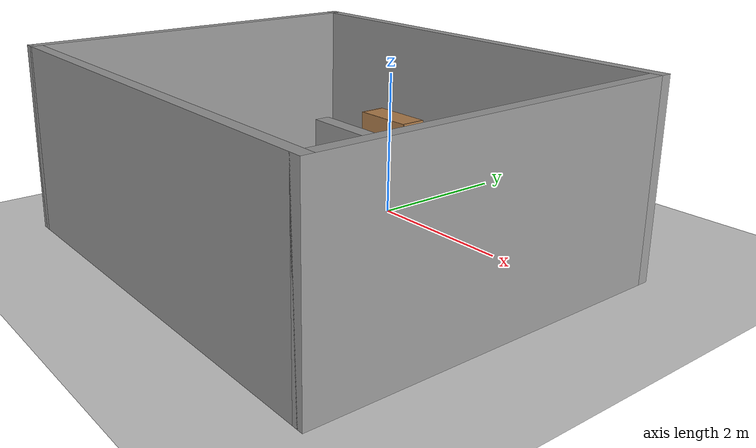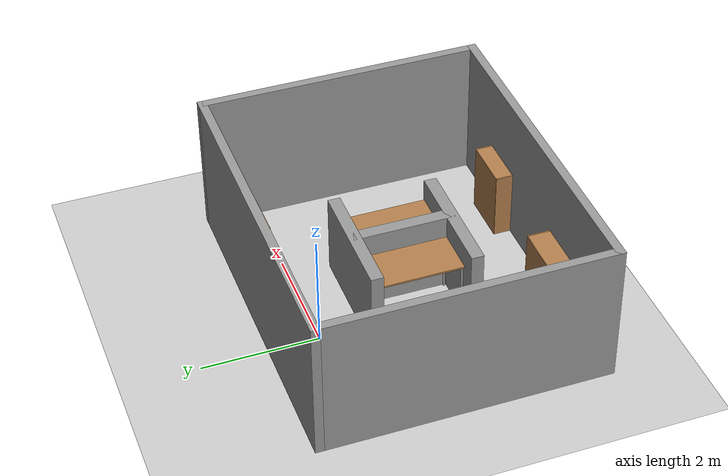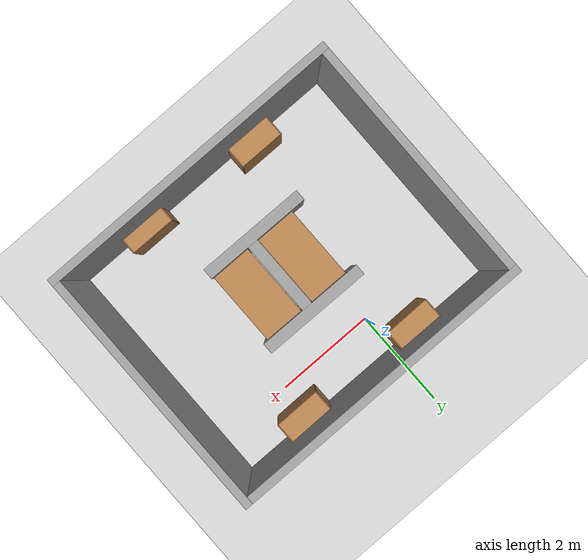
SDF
<sdf version="1.7">
 <world name="default">
  <light name="sun" type="directional">
   <pose>0 0 10 0 -0 0</pose>
   <diffuse>0.8 0.8 0.8 1</diffuse>
   <specular>0.2 0.2 0.2 1</specular>
   <attenuation>
    <range>1000</range>
    <constant>0.9</constant>
    <linear>0.01</linear>
    <quadratic>0.001</quadratic>
   </attenuation>
   <direction>-0.5 0.1 -0.9</direction>
   <spot><inner_angle>0</inner_angle><outer_angle>0</outer_angle><falloff>0</falloff></spot>
  </light>
  <model name="ground_plane">
   <static>1</static>
   <link name="link">
    <collision name="collision">
     <geometry><plane><normal>0 0 1</normal><size>100 100</size></plane></geometry>
     <surface>
      <contact><collide_bitmask>65535</collide_bitmask></contact>
      <friction><ode><mu>100</mu><mu2>50</mu2></ode></friction>
     </surface>
    </collision>
    <visual name="visual">
     <cast_shadows>0</cast_shadows>
     <geometry><plane><normal>0 0 1</normal><size>100 100</size></plane></geometry>
     <material>
      <script><uri>file://media/materials/scripts/gazebo.material</uri><name>Gazebo/Grey</name></script>
     </material>
    </visual>
   </link>
  </model>
  <gravity>0 0 -9.8</gravity>
  <magnetic_field>6e-06 2.3e-05 -4.2e-05</magnetic_field>
  <atmosphere type="adiabatic"/>
  <physics type="ode">
   <max_step_size>0.001</max_step_size>
   <real_time_factor>1</real_time_factor>
   <real_time_update_rate>1000</real_time_update_rate>
  </physics>
  <scene><ambient>0.4 0.4 0.4 1</ambient><background>0.7 0.7 0.7 1</background><shadows>1</shadows></scene>
  <spherical_coordinates>
   <surface_model>EARTH_WGS84</surface_model>
   <latitude_deg>0</latitude_deg>
   <longitude_deg>0</longitude_deg>
   <elevation>0</elevation>
   <heading_deg>0</heading_deg>
  </spherical_coordinates>
  <model name="Office4">
   <pose>0.615 -1.625 0 0 -0 0</pose>
   <link name="Wall_0">
    <collision name="Wall_0_Collision">
     <geometry><box><size>6 0.15 2.5</size></box></geometry>
     <pose>0 0 1.25 0 -0 0</pose>
    </collision>
    <visual name="Wall_0_Visual">
     <pose>0 0 1.25 0 -0 0</pose>
     <geometry><box><size>6 0.15 2.5</size></box></geometry>
     <material>
      <script><uri>file://media/materials/scripts/gazebo.material</uri><name>Gazebo/Grey</name></script>
      <ambient>1 1 1 1</ambient>
     </material>
     <meta><layer>0</layer></meta>
    </visual>
    <pose>0 -2.425 0 0 -0 0</pose>
   </link>
   <link name="Wall_3">
    <collision name="Wall_3_Collision">
     <geometry><box><size>5 0.15 2.5</size></box></geometry>
     <pose>0 0 1.25 0 -0 0</pose>
    </collision>
    <visual name="Wall_3_Visual">
     <pose>0 0 1.25 0 -0 0</pose>
     <geometry><box><size>5 0.15 2.5</size></box></geometry>
     <material>
      <script><uri>file://media/materials/scripts/gazebo.material</uri><name>Gazebo/Grey</name></script>
      <ambient>1 1 1 1</ambient>
     </material>
     <meta><layer>0</layer></meta>
    </visual>
    <pose>2.925 -0 0 0 -0 1.5708</pose>
   </link>
   <link name="Wall_4">
    <collision name="Wall_4_Collision">
     <geometry><box><size>6 0.15 2.5</size></box></geometry>
     <pose>0 0 1.25 0 -0 0</pose>
    </collision>
    <visual name="Wall_4_Visual">
     <pose>0 0 1.25 0 -0 0</pose>
     <geometry><box><size>6 0.15 2.5</size></box></geometry>
     <material>
      <script><uri>file://media/materials/scripts/gazebo.material</uri><name>Gazebo/Grey</name></script>
      <ambient>1 1 1 1</ambient>
     </material>
     <meta><layer>0</layer></meta>
    </visual>
    <pose>0 2.425 0 0 -0 3.14159</pose>
   </link>
   <link name="Wall_5">
    <collision name="Wall_5_Collision">
     <geometry><box><size>5 0.15 2.5</size></box></geometry>
     <pose>0 0 1.25 0 -0 0</pose>
    </collision>
    <visual name="Wall_5_Visual">
     <pose>0 0 1.25 0 -0 0</pose>
     <geometry><box><size>5 0.15 2.5</size></box></geometry>
     <material>
      <script><uri>file://media/materials/scripts/gazebo.material</uri><name>Gazebo/Grey</name></script>
      <ambient>1 1 1 1</ambient>
     </material>
     <meta><layer>0</layer></meta>
    </visual>
    <pose>-2.925 -0 0 0 -0 -1.5708</pose>
   </link>
   <static>1</static>
  </model>
  <model name="bookshelf">
   <static>1</static>
   <link name="link">
    <inertial><mass>1</mass></inertial>
    <collision name="back">
     <pose>0 0.005 0.6 0 -0 0</pose>
     <geometry><box><size>0.9 0.01 1.2</size></box></geometry>
    </collision>
    <visual name="visual1">
     <pose>0 0.005 0.6 0 -0 0</pose>
     <geometry><box><size>0.9 0.01 1.2</size></box></geometry>
     <material>
      <script><uri>file://media/materials/scripts/gazebo.material</uri><name>Gazebo/Wood</name></script>
     </material>
    </visual>
    <collision name="left_side">
     <pose>0.45 -0.195 0.6 0 -0 0</pose>
     <geometry><box><size>0.02 0.4 1.2</size></box></geometry>
    </collision>
    <visual name="visual2">
     <pose>0.45 -0.195 0.6 0 -0 0</pose>
     <geometry><box><size>0.02 0.4 1.2</size></box></geometry>
     <material>
      <script><uri>file://media/materials/scripts/gazebo.material</uri><name>Gazebo/Wood</name></script>
     </material>
    </visual>
    <collision name="right_side">
     <pose>-0.45 -0.195 0.6 0 -0 0</pose>
     <geometry><box><size>0.02 0.4 1.2</size></box></geometry>
    </collision>
    <visual name="visual3">
     <pose>-0.45 -0.195 0.6 0 -0 0</pose>
     <geometry><box><size>0.02 0.4 1.2</size></box></geometry>
     <material>
      <script><uri>file://media/materials/scripts/gazebo.material</uri><name>Gazebo/Wood</name></script>
     </material>
    </visual>
    <collision name="bottom">
     <pose>0 -0.195 0.03 0 -0 0</pose>
     <geometry><box><size>0.88 0.4 0.06</size></box></geometry>
    </collision>
    <visual name="visual4">
     <pose>0 -0.195 0.03 0 -0 0</pose>
     <geometry><box><size>0.88 0.4 0.06</size></box></geometry>
     <material>
      <script><uri>file://media/materials/scripts/gazebo.material</uri><name>Gazebo/Wood</name></script>
     </material>
    </visual>
    <collision name="top">
     <pose>0 -0.195 1.19 0 -0 0</pose>
     <geometry><box><size>0.88 0.4 0.02</size></box></geometry>
    </collision>
    <visual name="visual5">
     <pose>0 -0.195 1.19 0 -0 0</pose>
     <geometry><box><size>0.88 0.4 0.02</size></box></geometry>
     <material>
      <script><uri>file://media/materials/scripts/gazebo.material</uri><name>Gazebo/Wood</name></script>
     </material>
    </visual>
    <collision name="low_shelf">
     <pose>0 -0.195 0.43 0 -0 0</pose>
     <geometry><box><size>0.88 0.4 0.02</size></box></geometry>
    </collision>
    <visual name="visual6">
     <pose>0 -0.195 0.43 0 -0 0</pose>
     <geometry><box><size>0.88 0.4 0.02</size></box></geometry>
     <material>
      <script><uri>file://media/materials/scripts/gazebo.material</uri><name>Gazebo/Wood</name></script>
     </material>
    </visual>
    <collision name="high_shelf">
     <pose>0 -0.195 0.8 0 -0 0</pose>
     <geometry><box><size>0.88 0.4 0.02</size></box></geometry>
    </collision>
    <visual name="visual7">
     <pose>0 -0.195 0.8 0 -0 0</pose>
     <geometry><box><size>0.88 0.4 0.02</size></box></geometry>
     <material>
      <script><uri>file://media/materials/scripts/gazebo.material</uri><name>Gazebo/Wood</name></script>
     </material>
    </visual>
   </link>
   <pose>1.92918 -3.68244 0 0 -0 0</pose>
  </model>
  <model name="bookshelf_clone_0">
   <static>1</static>
   <link name="link">
    <inertial><mass>1</mass></inertial>
    <collision name="back">
     <pose>0 0.005 0.6 0 -0 0</pose>
     <geometry><box><size>0.9 0.01 1.2</size></box></geometry>
    </collision>
    <visual name="visual1">
     <pose>0 0.005 0.6 0 -0 0</pose>
     <geometry><box><size>0.9 0.01 1.2</size></box></geometry>
     <material>
      <script><uri>file://media/materials/scripts/gazebo.material</uri><name>Gazebo/Wood</name></script>
     </material>
    </visual>
    <collision name="left_side">
     <pose>0.45 -0.195 0.6 0 -0 0</pose>
     <geometry><box><size>0.02 0.4 1.2</size></box></geometry>
    </collision>
    <visual name="visual2">
     <pose>0.45 -0.195 0.6 0 -0 0</pose>
     <geometry><box><size>0.02 0.4 1.2</size></box></geometry>
     <material>
      <script><uri>file://media/materials/scripts/gazebo.material</uri><name>Gazebo/Wood</name></script>
     </material>
    </visual>
    <collision name="right_side">
     <pose>-0.45 -0.195 0.6 0 -0 0</pose>
     <geometry><box><size>0.02 0.4 1.2</size></box></geometry>
    </collision>
    <visual name="visual3">
     <pose>-0.45 -0.195 0.6 0 -0 0</pose>
     <geometry><box><size>0.02 0.4 1.2</size></box></geometry>
     <material>
      <script><uri>file://media/materials/scripts/gazebo.material</uri><name>Gazebo/Wood</name></script>
     </material>
    </visual>
    <collision name="bottom">
     <pose>0 -0.195 0.03 0 -0 0</pose>
     <geometry><box><size>0.88 0.4 0.06</size></box></geometry>
    </collision>
    <visual name="visual4">
     <pose>0 -0.195 0.03 0 -0 0</pose>
     <geometry><box><size>0.88 0.4 0.06</size></box></geometry>
     <material>
      <script><uri>file://media/materials/scripts/gazebo.material</uri><name>Gazebo/Wood</name></script>
     </material>
    </visual>
    <collision name="top">
     <pose>0 -0.195 1.19 0 -0 0</pose>
     <geometry><box><size>0.88 0.4 0.02</size></box></geometry>
    </collision>
    <visual name="visual5">
     <pose>0 -0.195 1.19 0 -0 0</pose>
     <geometry><box><size>0.88 0.4 0.02</size></box></geometry>
     <material>
      <script><uri>file://media/materials/scripts/gazebo.material</uri><name>Gazebo/Wood</name></script>
     </material>
    </visual>
    <collision name="low_shelf">
     <pose>0 -0.195 0.43 0 -0 0</pose>
     <geometry><box><size>0.88 0.4 0.02</size></box></geometry>
    </collision>
    <visual name="visual6">
     <pose>0 -0.195 0.43 0 -0 0</pose>
     <geometry><box><size>0.88 0.4 0.02</size></box></geometry>
     <material>
      <script><uri>file://media/materials/scripts/gazebo.material</uri><name>Gazebo/Wood</name></script>
     </material>
    </visual>
    <collision name="high_shelf">
     <pose>0 -0.195 0.8 0 -0 0</pose>
     <geometry><box><size>0.88 0.4 0.02</size></box></geometry>
    </collision>
    <visual name="visual7">
     <pose>0 -0.195 0.8 0 -0 0</pose>
     <geometry><box><size>0.88 0.4 0.02</size></box></geometry>
     <material>
      <script><uri>file://media/materials/scripts/gazebo.material</uri><name>Gazebo/Wood</name></script>
     </material>
    </visual>
   </link>
   <pose>-0.53762 -3.57182 0 0 -0 0</pose>
  </model>
  <model name="table">
   <static>1</static>
   <link name="link">
    <collision name="surface">
     <pose>0 0 1 0 -0 0</pose>
     <geometry><box><size>1.5 0.8 0.03</size></box></geometry>
     <surface><friction><ode><mu>0.6</mu><mu2>0.6</mu2></ode></friction></surface>
    </collision>
    <visual name="visual1">
     <pose>0 0 1 0 -0 0</pose>
     <geometry><box><size>1.5 0.8 0.03</size></box></geometry>
     <material>
      <script><uri>file://media/materials/scripts/gazebo.material</uri><name>Gazebo/Wood</name></script>
     </material>
    </visual>
    <collision name="front_left_leg">
     <pose>0.68 0.38 0.5 0 -0 0</pose>
     <geometry><cylinder><radius>0.02</radius><length>1</length></cylinder></geometry>
    </collision>
    <visual name="front_left_leg">
     <pose>0.68 0.38 0.5 0 -0 0</pose>
     <geometry><cylinder><radius>0.02</radius><length>1</length></cylinder></geometry>
     <material>
      <script><uri>file://media/materials/scripts/gazebo.material</uri><name>Gazebo/Grey</name></script>
     </material>
    </visual>
    <collision name="front_right_leg">
     <pose>0.68 -0.38 0.5 0 -0 0</pose>
     <geometry><cylinder><radius>0.02</radius><length>1</length></cylinder></geometry>
    </collision>
    <visual name="front_right_leg">
     <pose>0.68 -0.38 0.5 0 -0 0</pose>
     <geometry><cylinder><radius>0.02</radius><length>1</length></cylinder></geometry>
     <material>
      <script><uri>file://media/materials/scripts/gazebo.material</uri><name>Gazebo/Grey</name></script>
     </material>
    </visual>
    <collision name="back_right_leg">
     <pose>-0.68 -0.38 0.5 0 -0 0</pose>
     <geometry><cylinder><radius>0.02</radius><length>1</length></cylinder></geometry>
    </collision>
    <visual name="back_right_leg">
     <pose>-0.68 -0.38 0.5 0 -0 0</pose>
     <geometry><cylinder><radius>0.02</radius><length>1</length></cylinder></geometry>
     <material>
      <script><uri>file://media/materials/scripts/gazebo.material</uri><name>Gazebo/Grey</name></script>
     </material>
    </visual>
    <collision name="back_left_leg">
     <pose>-0.68 0.38 0.5 0 -0 0</pose>
     <geometry><cylinder><radius>0.02</radius><length>1</length></cylinder></geometry>
    </collision>
    <visual name="back_left_leg">
     <pose>-0.68 0.38 0.5 0 -0 0</pose>
     <geometry><cylinder><radius>0.02</radius><length>1</length></cylinder></geometry>
     <material>
      <script><uri>file://media/materials/scripts/gazebo.material</uri><name>Gazebo/Grey</name></script>
     </material>
    </visual>
   </link>
   <pose>0.155111 -1.69137 0 0 -0 1.57284</pose>
  </model>
  <model name="table_clone">
   <static>1</static>
   <link name="link">
    <collision name="surface">
     <pose>0 0 1 0 -0 0</pose>
     <geometry><box><size>1.5 0.8 0.03</size></box></geometry>
     <surface><friction><ode><mu>0.6</mu><mu2>0.6</mu2></ode></friction></surface>
    </collision>
    <visual name="visual1">
     <pose>0 0 1 0 -0 0</pose>
     <geometry><box><size>1.5 0.8 0.03</size></box></geometry>
     <material>
      <script><uri>file://media/materials/scripts/gazebo.material</uri><name>Gazebo/Wood</name></script>
     </material>
    </visual>
    <collision name="front_left_leg">
     <pose>0.68 0.38 0.5 0 -0 0</pose>
     <geometry><cylinder><radius>0.02</radius><length>1</length></cylinder></geometry>
    </collision>
    <visual name="front_left_leg">
     <pose>0.68 0.38 0.5 0 -0 0</pose>
     <geometry><cylinder><radius>0.02</radius><length>1</length></cylinder></geometry>
     <material>
      <script><uri>file://media/materials/scripts/gazebo.material</uri><name>Gazebo/Grey</name></script>
     </material>
    </visual>
    <collision name="front_right_leg">
     <pose>0.68 -0.38 0.5 0 -0 0</pose>
     <geometry><cylinder><radius>0.02</radius><length>1</length></cylinder></geometry>
    </collision>
    <visual name="front_right_leg">
     <pose>0.68 -0.38 0.5 0 -0 0</pose>
     <geometry><cylinder><radius>0.02</radius><length>1</length></cylinder></geometry>
     <material>
      <script><uri>file://media/materials/scripts/gazebo.material</uri><name>Gazebo/Grey</name></script>
     </material>
    </visual>
    <collision name="back_right_leg">
     <pose>-0.68 -0.38 0.5 0 -0 0</pose>
     <geometry><cylinder><radius>0.02</radius><length>1</length></cylinder></geometry>
    </collision>
    <visual name="back_right_leg">
     <pose>-0.68 -0.38 0.5 0 -0 0</pose>
     <geometry><cylinder><radius>0.02</radius><length>1</length></cylinder></geometry>
     <material>
      <script><uri>file://media/materials/scripts/gazebo.material</uri><name>Gazebo/Grey</name></script>
     </material>
    </visual>
    <collision name="back_left_leg">
     <pose>-0.68 0.38 0.5 0 -0 0</pose>
     <geometry><cylinder><radius>0.02</radius><length>1</length></cylinder></geometry>
    </collision>
    <visual name="back_left_leg">
     <pose>-0.68 0.38 0.5 0 -0 0</pose>
     <geometry><cylinder><radius>0.02</radius><length>1</length></cylinder></geometry>
     <material>
      <script><uri>file://media/materials/scripts/gazebo.material</uri><name>Gazebo/Grey</name></script>
     </material>
    </visual>
   </link>
   <pose>1.20102 -1.69438 0 0 -0 1.57284</pose>
  </model>
  <model name="StaticObject_clone_clone">
   <link name="link_0">
    <inertial>
     <mass>1</mass>
     <inertia>
      <ixx>0.166667</ixx>
      <ixy>0</ixy>
      <ixz>0</ixz>
      <iyy>0.166667</iyy>
      <iyz>0</iyz>
      <izz>0.166667</izz>
     </inertia>
    </inertial>
    <visual name="visual">
     <geometry><box><size>0.215982 2.14377 1.81309</size></box></geometry>
     <material>
      <lighting>1</lighting>
      <script><uri>file://media/materials/scripts/gazebo.material</uri><name>Gazebo/Grey</name></script>
      <shader type="pixel"/>
     </material>
    </visual>
    <collision name="collision">
     <geometry><box><size>0.215982 2.14377 1.81309</size></box></geometry>
     <surface>
      <friction>
       <ode><mu>1</mu><mu2>1</mu2><fdir1>0 0 0</fdir1><slip1>0</slip1><slip2>0</slip2></ode>
       <torsional>
        <coefficient>1</coefficient>
        <patch_radius>0</patch_radius>
        <surface_radius>0</surface_radius>
        <use_patch_radius>1</use_patch_radius>
        <ode><slip>0</slip></ode>
       </torsional>
      </friction>
      <bounce><restitution_coefficient>0</restitution_coefficient><threshold>1e+06</threshold></bounce>
      <contact>
       <collide_without_contact>0</collide_without_contact>
       <collide_without_contact_bitmask>1</collide_without_contact_bitmask>
       <collide_bitmask>1</collide_bitmask>
       <ode>
        <soft_cfm>0</soft_cfm>
        <soft_erp>0.2</soft_erp>
        <kp>1e+13</kp>
        <kd>1</kd>
        <max_vel>0.01</max_vel>
        <min_depth>0</min_depth>
       </ode>
       <bullet>
        <split_impulse>1</split_impulse>
        <split_impulse_penetration_threshold>-0.01</split_impulse_penetration_threshold>
        <soft_cfm>0</soft_cfm>
        <soft_erp>0.2</soft_erp>
        <kp>1e+13</kp>
        <kd>1</kd>
       </bullet>
      </contact>
     </surface>
    </collision>
   </link>
   <static>1</static>
   <pose>0.609999 -0.84 0.5 0 0 -1.57636</pose>
  </model>
  <model name="bookshelf_clone_0_clone">
   <static>1</static>
   <link name="link">
    <inertial><mass>1</mass></inertial>
    <collision name="back">
     <pose>0 0.005 0.6 0 -0 0</pose>
     <geometry><box><size>0.9 0.01 1.2</size></box></geometry>
    </collision>
    <visual name="visual1">
     <pose>0 0.005 0.6 0 -0 0</pose>
     <geometry><box><size>0.9 0.01 1.2</size></box></geometry>
     <material>
      <script><uri>file://media/materials/scripts/gazebo.material</uri><name>Gazebo/Wood</name></script>
     </material>
    </visual>
    <collision name="left_side">
     <pose>0.45 -0.195 0.6 0 -0 0</pose>
     <geometry><box><size>0.02 0.4 1.2</size></box></geometry>
    </collision>
    <visual name="visual2">
     <pose>0.45 -0.195 0.6 0 -0 0</pose>
     <geometry><box><size>0.02 0.4 1.2</size></box></geometry>
     <material>
      <script><uri>file://media/materials/scripts/gazebo.material</uri><name>Gazebo/Wood</name></script>
     </material>
    </visual>
    <collision name="right_side">
     <pose>-0.45 -0.195 0.6 0 -0 0</pose>
     <geometry><box><size>0.02 0.4 1.2</size></box></geometry>
    </collision>
    <visual name="visual3">
     <pose>-0.45 -0.195 0.6 0 -0 0</pose>
     <geometry><box><size>0.02 0.4 1.2</size></box></geometry>
     <material>
      <script><uri>file://media/materials/scripts/gazebo.material</uri><name>Gazebo/Wood</name></script>
     </material>
    </visual>
    <collision name="bottom">
     <pose>0 -0.195 0.03 0 -0 0</pose>
     <geometry><box><size>0.88 0.4 0.06</size></box></geometry>
    </collision>
    <visual name="visual4">
     <pose>0 -0.195 0.03 0 -0 0</pose>
     <geometry><box><size>0.88 0.4 0.06</size></box></geometry>
     <material>
      <script><uri>file://media/materials/scripts/gazebo.material</uri><name>Gazebo/Wood</name></script>
     </material>
    </visual>
    <collision name="top">
     <pose>0 -0.195 1.19 0 -0 0</pose>
     <geometry><box><size>0.88 0.4 0.02</size></box></geometry>
    </collision>
    <visual name="visual5">
     <pose>0 -0.195 1.19 0 -0 0</pose>
     <geometry><box><size>0.88 0.4 0.02</size></box></geometry>
     <material>
      <script><uri>file://media/materials/scripts/gazebo.material</uri><name>Gazebo/Wood</name></script>
     </material>
    </visual>
    <collision name="low_shelf">
     <pose>0 -0.195 0.43 0 -0 0</pose>
     <geometry><box><size>0.88 0.4 0.02</size></box></geometry>
    </collision>
    <visual name="visual6">
     <pose>0 -0.195 0.43 0 -0 0</pose>
     <geometry><box><size>0.88 0.4 0.02</size></box></geometry>
     <material>
      <script><uri>file://media/materials/scripts/gazebo.material</uri><name>Gazebo/Wood</name></script>
     </material>
    </visual>
    <collision name="high_shelf">
     <pose>0 -0.195 0.8 0 -0 0</pose>
     <geometry><box><size>0.88 0.4 0.02</size></box></geometry>
    </collision>
    <visual name="visual7">
     <pose>0 -0.195 0.8 0 -0 0</pose>
     <geometry><box><size>0.88 0.4 0.02</size></box></geometry>
     <material>
      <script><uri>file://media/materials/scripts/gazebo.material</uri><name>Gazebo/Wood</name></script>
     </material>
    </visual>
   </link>
   <pose>-0.552798 0.346434 0 0 0 -3.13171</pose>
  </model>
  <model name="bookshelf_clone_0_clone_clone_clone">
   <static>1</static>
   <link name="link">
    <inertial><mass>1</mass></inertial>
    <collision name="back">
     <pose>0 0.005 0.6 0 -0 0</pose>
     <geometry><box><size>0.9 0.01 1.2</size></box></geometry>
    </collision>
    <visual name="visual1">
     <pose>0 0.005 0.6 0 -0 0</pose>
     <geometry><box><size>0.9 0.01 1.2</size></box></geometry>
     <material>
      <script><uri>file://media/materials/scripts/gazebo.material</uri><name>Gazebo/Wood</name></script>
     </material>
    </visual>
    <collision name="left_side">
     <pose>0.45 -0.195 0.6 0 -0 0</pose>
     <geometry><box><size>0.02 0.4 1.2</size></box></geometry>
    </collision>
    <visual name="visual2">
     <pose>0.45 -0.195 0.6 0 -0 0</pose>
     <geometry><box><size>0.02 0.4 1.2</size></box></geometry>
     <material>
      <script><uri>file://media/materials/scripts/gazebo.material</uri><name>Gazebo/Wood</name></script>
     </material>
    </visual>
    <collision name="right_side">
     <pose>-0.45 -0.195 0.6 0 -0 0</pose>
     <geometry><box><size>0.02 0.4 1.2</size></box></geometry>
    </collision>
    <visual name="visual3">
     <pose>-0.45 -0.195 0.6 0 -0 0</pose>
     <geometry><box><size>0.02 0.4 1.2</size></box></geometry>
     <material>
      <script><uri>file://media/materials/scripts/gazebo.material</uri><name>Gazebo/Wood</name></script>
     </material>
    </visual>
    <collision name="bottom">
     <pose>0 -0.195 0.03 0 -0 0</pose>
     <geometry><box><size>0.88 0.4 0.06</size></box></geometry>
    </collision>
    <visual name="visual4">
     <pose>0 -0.195 0.03 0 -0 0</pose>
     <geometry><box><size>0.88 0.4 0.06</size></box></geometry>
     <material>
      <script><uri>file://media/materials/scripts/gazebo.material</uri><name>Gazebo/Wood</name></script>
     </material>
    </visual>
    <collision name="top">
     <pose>0 -0.195 1.19 0 -0 0</pose>
     <geometry><box><size>0.88 0.4 0.02</size></box></geometry>
    </collision>
    <visual name="visual5">
     <pose>0 -0.195 1.19 0 -0 0</pose>
     <geometry><box><size>0.88 0.4 0.02</size></box></geometry>
     <material>
      <script><uri>file://media/materials/scripts/gazebo.material</uri><name>Gazebo/Wood</name></script>
     </material>
    </visual>
    <collision name="low_shelf">
     <pose>0 -0.195 0.43 0 -0 0</pose>
     <geometry><box><size>0.88 0.4 0.02</size></box></geometry>
    </collision>
    <visual name="visual6">
     <pose>0 -0.195 0.43 0 -0 0</pose>
     <geometry><box><size>0.88 0.4 0.02</size></box></geometry>
     <material>
      <script><uri>file://media/materials/scripts/gazebo.material</uri><name>Gazebo/Wood</name></script>
     </material>
    </visual>
    <collision name="high_shelf">
     <pose>0 -0.195 0.8 0 -0 0</pose>
     <geometry><box><size>0.88 0.4 0.02</size></box></geometry>
    </collision>
    <visual name="visual7">
     <pose>0 -0.195 0.8 0 -0 0</pose>
     <geometry><box><size>0.88 0.4 0.02</size></box></geometry>
     <material>
      <script><uri>file://media/materials/scripts/gazebo.material</uri><name>Gazebo/Wood</name></script>
     </material>
    </visual>
   </link>
   <pose>1.99427 0.308947 0 0 0 -3.13171</pose>
  </model>
  <model name="StaticObject_clone_clone_clone">
   <link name="link_0">
    <inertial>
     <mass>1</mass>
     <inertia>
      <ixx>0.166667</ixx>
      <ixy>0</ixy>
      <ixz>0</ixz>
      <iyy>0.166667</iyy>
      <iyz>0</iyz>
      <izz>0.166667</izz>
     </inertia>
    </inertial>
    <visual name="visual">
     <geometry><box><size>0.215982 2.14377 1.81309</size></box></geometry>
     <material>
      <lighting>1</lighting>
      <script><uri>file://media/materials/scripts/gazebo.material</uri><name>Gazebo/Grey</name></script>
      <shader type="pixel"/>
     </material>
    </visual>
    <collision name="collision">
     <geometry><box><size>0.215982 2.14377 1.81309</size></box></geometry>
     <surface>
      <friction>
       <ode><mu>1</mu><mu2>1</mu2><fdir1>0 0 0</fdir1><slip1>0</slip1><slip2>0</slip2></ode>
       <torsional>
        <coefficient>1</coefficient>
        <patch_radius>0</patch_radius>
        <surface_radius>0</surface_radius>
        <use_patch_radius>1</use_patch_radius>
        <ode><slip>0</slip></ode>
       </torsional>
      </friction>
      <bounce><restitution_coefficient>0</restitution_coefficient><threshold>1e+06</threshold></bounce>
      <contact>
       <collide_without_contact>0</collide_without_contact>
       <collide_without_contact_bitmask>1</collide_without_contact_bitmask>
       <collide_bitmask>1</collide_bitmask>
       <ode>
        <soft_cfm>0</soft_cfm>
        <soft_erp>0.2</soft_erp>
        <kp>1e+13</kp>
        <kd>1</kd>
        <max_vel>0.01</max_vel>
        <min_depth>0</min_depth>
       </ode>
       <bullet>
        <split_impulse>1</split_impulse>
        <split_impulse_penetration_threshold>-0.01</split_impulse_penetration_threshold>
        <soft_cfm>0</soft_cfm>
        <soft_erp>0.2</soft_erp>
        <kp>1e+13</kp>
        <kd>1</kd>
       </bullet>
      </contact>
     </surface>
    </collision>
   </link>
   <static>1</static>
   <pose>0.549999 -2.52 0.5 0 0 -1.57636</pose>
  </model>
  <model name="StaticObject_clone_clone_clone_0">
   <link name="link_0">
    <inertial>
     <mass>1</mass>
     <inertia>
      <ixx>0.166667</ixx>
      <ixy>0</ixy>
      <ixz>0</ixz>
      <iyy>0.166667</iyy>
      <iyz>0</iyz>
      <izz>0.166667</izz>
     </inertia>
    </inertial>
    <visual name="visual">
     <geometry><box><size>0.215982 1.78374 1.81309</size></box></geometry>
     <material>
      <lighting>1</lighting>
      <script><uri>file://media/materials/scripts/gazebo.material</uri><name>Gazebo/Grey</name></script>
      <shader type="pixel"/>
     </material>
    </visual>
    <collision name="collision">
     <geometry><box><size>0.215982 1.78374 1.81309</size></box></geometry>
     <surface>
      <friction>
       <ode><mu>1</mu><mu2>1</mu2><fdir1>0 0 0</fdir1><slip1>0</slip1><slip2>0</slip2></ode>
       <torsional>
        <coefficient>1</coefficient>
        <patch_radius>0</patch_radius>
        <surface_radius>0</surface_radius>
        <use_patch_radius>1</use_patch_radius>
        <ode><slip>0</slip></ode>
       </torsional>
      </friction>
      <bounce><restitution_coefficient>0</restitution_coefficient><threshold>1e+06</threshold></bounce>
      <contact>
       <collide_without_contact>0</collide_without_contact>
       <collide_without_contact_bitmask>1</collide_without_contact_bitmask>
       <collide_bitmask>1</collide_bitmask>
       <ode>
        <soft_cfm>0</soft_cfm>
        <soft_erp>0.2</soft_erp>
        <kp>1e+13</kp>
        <kd>1</kd>
        <max_vel>0.01</max_vel>
        <min_depth>0</min_depth>
       </ode>
       <bullet>
        <split_impulse>1</split_impulse>
        <split_impulse_penetration_threshold>-0.01</split_impulse_penetration_threshold>
        <soft_cfm>0</soft_cfm>
        <soft_erp>0.2</soft_erp>
        <kp>1e+13</kp>
        <kd>1</kd>
       </bullet>
      </contact>
     </surface>
    </collision>
   </link>
   <static>1</static>
   <pose>0.670038 -1.67005 0.5 0 0 -0.000759</pose>
  </model>
 </world>
</sdf>
